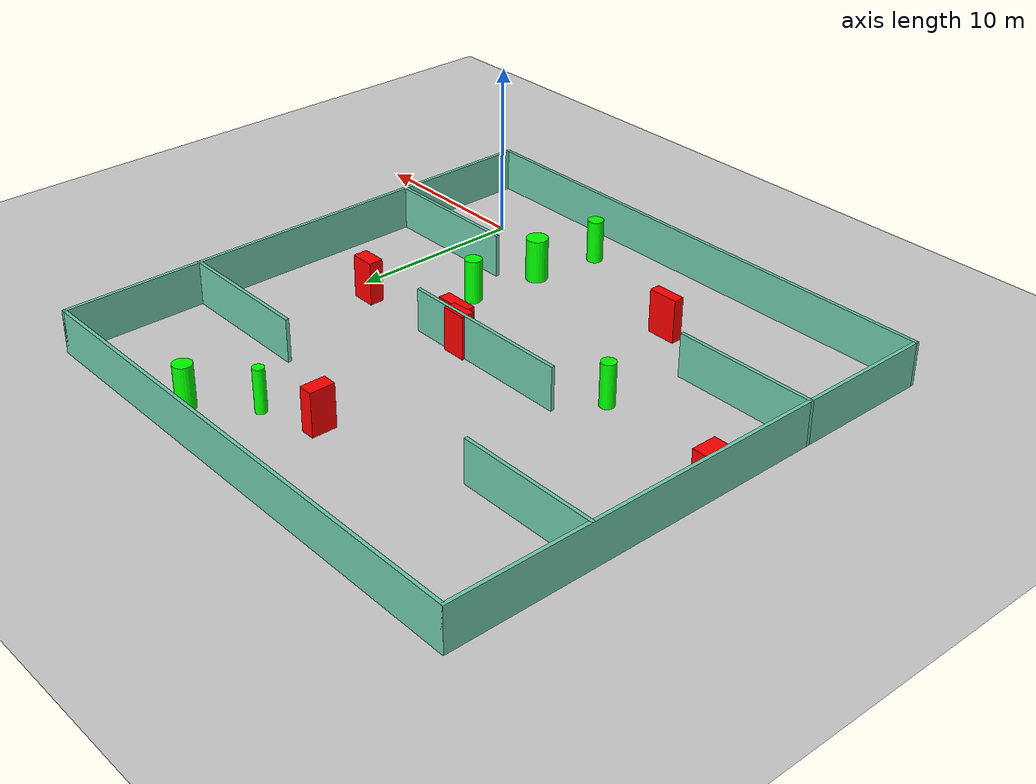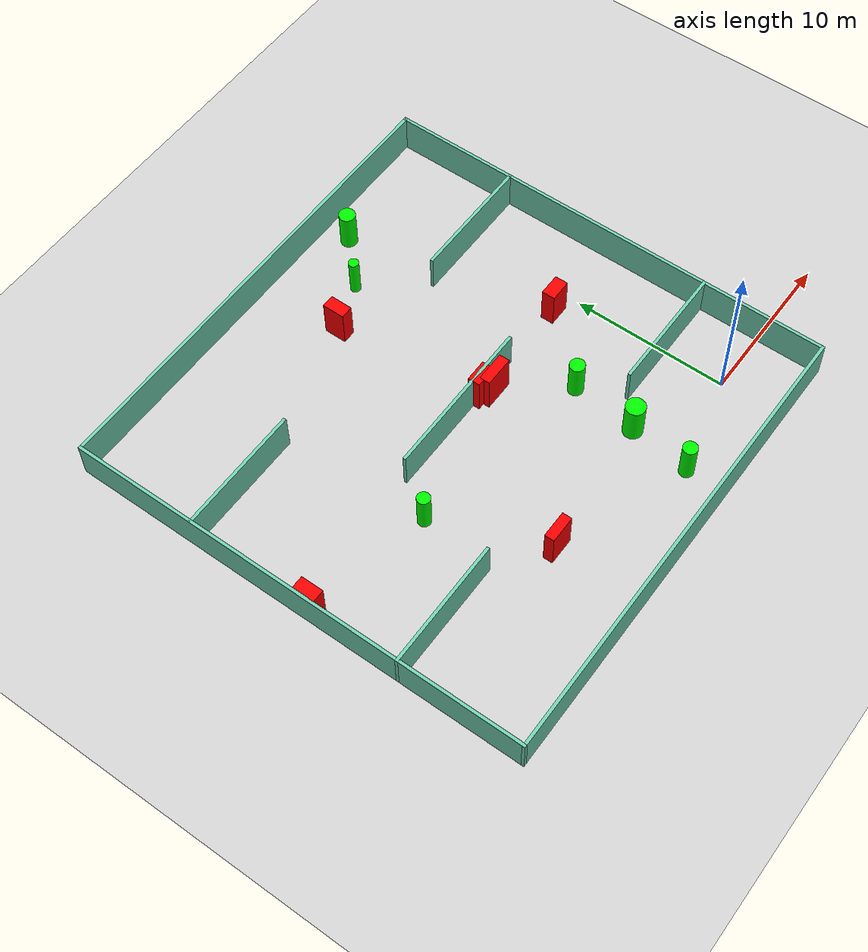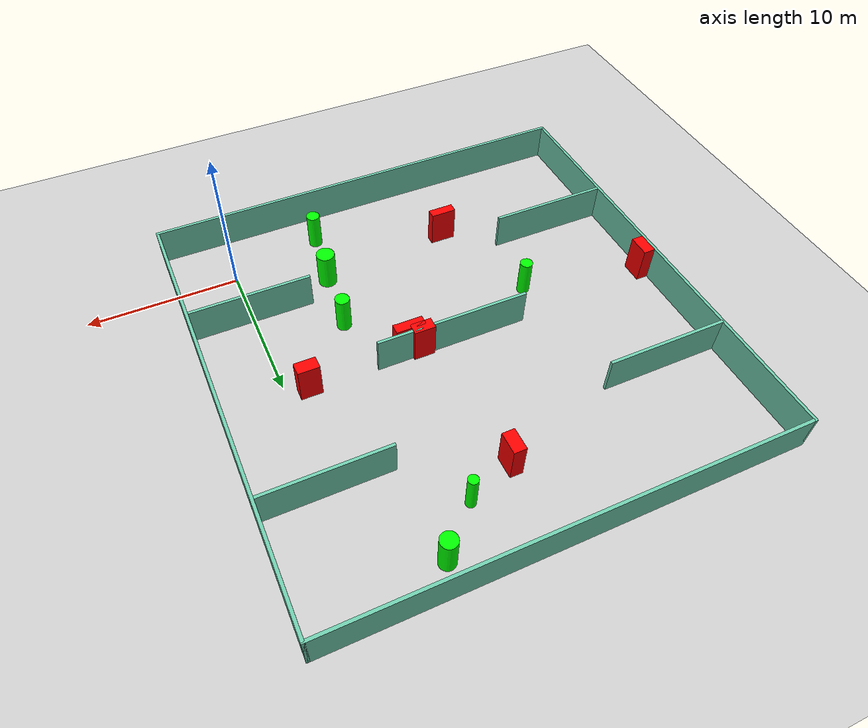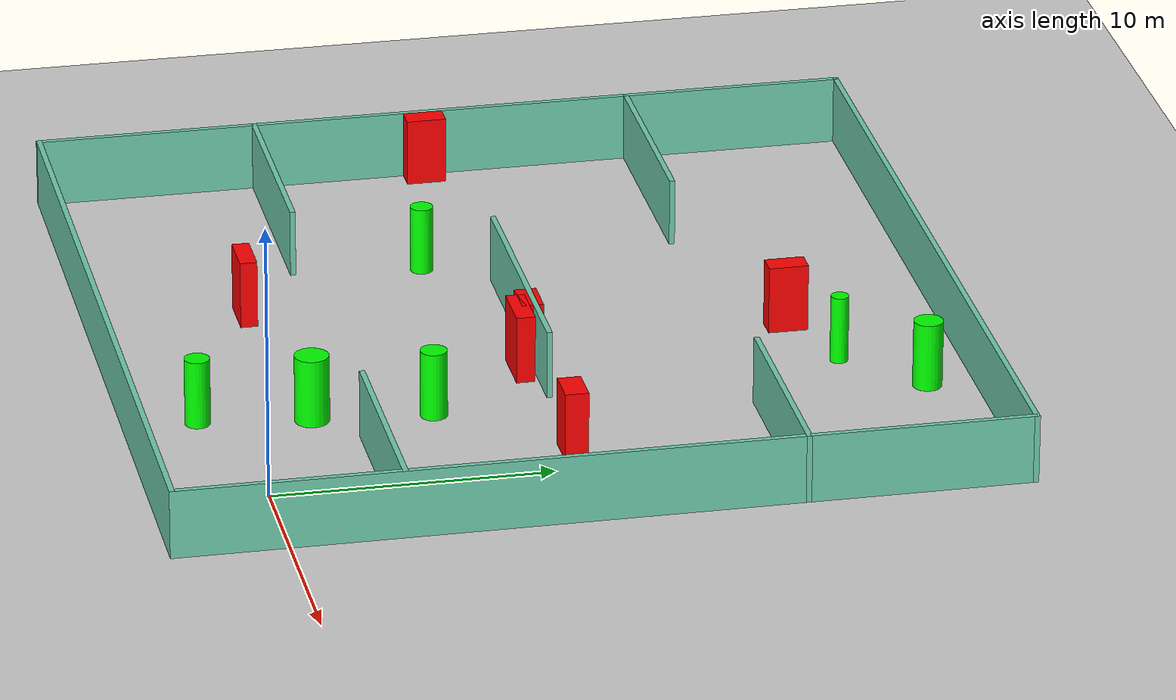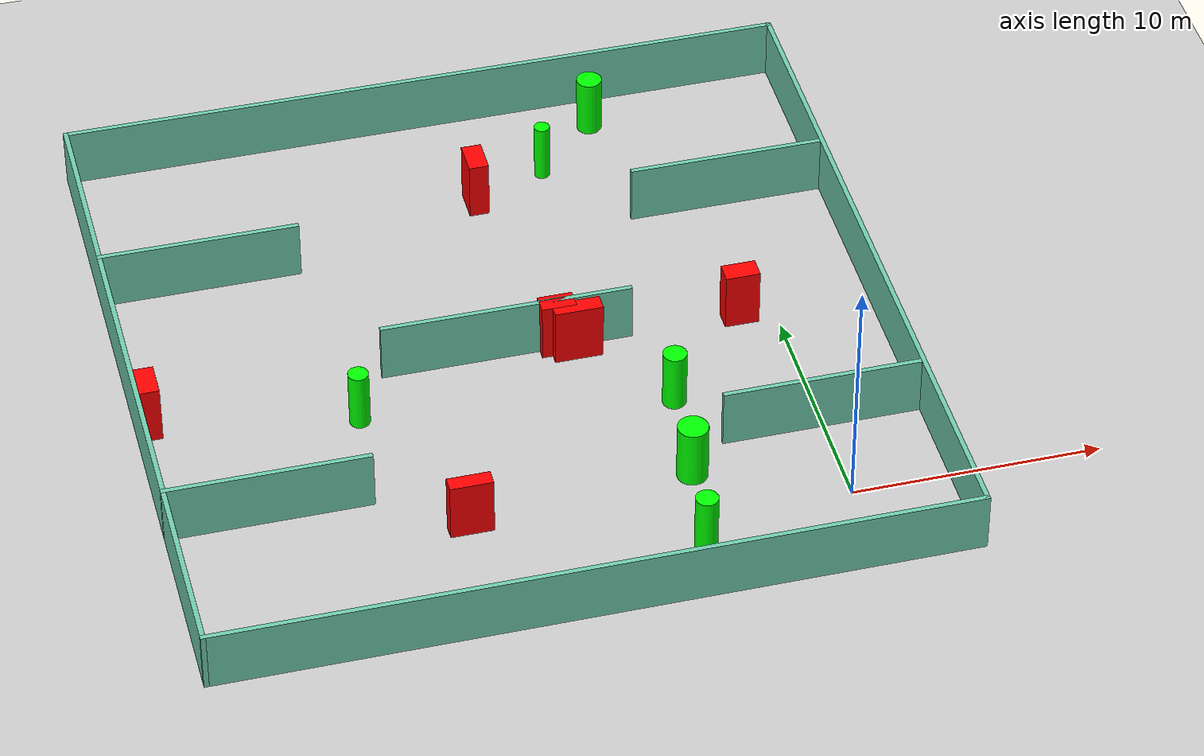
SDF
<sdf version="1.7">
 <world name="default">
  <light name="sun" type="directional">
   <pose>0 0 10 0 -0 0</pose>
   <diffuse>0.8 0.8 0.8 1</diffuse>
   <specular>0.2 0.2 0.2 1</specular>
   <attenuation>
    <range>1000</range>
    <constant>0.9</constant>
    <linear>0.01</linear>
    <quadratic>0.001</quadratic>
   </attenuation>
   <direction>-0.5 0.1 -0.9</direction>
   <spot><inner_angle>0</inner_angle><outer_angle>0</outer_angle><falloff>0</falloff></spot>
  </light>
  <model name="ground_plane">
   <static>1</static>
   <link name="link">
    <collision name="collision">
     <geometry><plane><normal>0 0 1</normal><size>100 100</size></plane></geometry>
     <surface>
      <contact><collide_bitmask>65535</collide_bitmask></contact>
      <friction><ode><mu>100</mu><mu2>50</mu2></ode></friction>
     </surface>
    </collision>
    <visual name="visual">
     <cast_shadows>0</cast_shadows>
     <geometry><plane><normal>0 0 1</normal><size>100 100</size></plane></geometry>
     <material>
      <script><uri>file://media/materials/scripts/gazebo.material</uri><name>Gazebo/Grey</name></script>
     </material>
    </visual>
   </link>
  </model>
  <gravity>0 0 -9.8</gravity>
  <magnetic_field>6e-06 2.3e-05 -4.2e-05</magnetic_field>
  <atmosphere type="adiabatic"/>
  <physics type="ode">
   <max_step_size>0.001</max_step_size>
   <real_time_factor>1</real_time_factor>
   <real_time_update_rate>1000</real_time_update_rate>
  </physics>
  <scene><ambient>0.4 0.4 0.4 1</ambient><background>0.7 0.7 0.7 1</background><shadows>1</shadows></scene>
  <spherical_coordinates>
   <surface_model>EARTH_WGS84</surface_model>
   <latitude_deg>0</latitude_deg>
   <longitude_deg>0</longitude_deg>
   <elevation>0</elevation>
   <heading_deg>0</heading_deg>
  </spherical_coordinates>
  <model name="my_base_walls">
   <link name="Wall_10">
    <collision name="Wall_10_Collision">
     <geometry><box><size>8.2 0.2 2.5</size></box></geometry>
     <pose>0 0 1.25 0 -0 0</pose>
    </collision>
    <visual name="Wall_10_Visual">
     <pose>0 0 1.25 0 -0 0</pose>
     <geometry><box><size>8.2 0.2 2.5</size></box></geometry>
     <material>
      <script><uri>file://media/materials/scripts/gazebo.material</uri><name>Gazebo/Grey</name></script>
      <ambient>0.435294 0.796078 0.67451 1</ambient>
     </material>
     <meta><layer>0</layer></meta>
    </visual>
    <pose>-11 -7 0 0 -0 0</pose>
   </link>
   <link name="Wall_12">
    <collision name="Wall_12_Collision">
     <geometry><box><size>8.2 0.2 2.5</size></box></geometry>
     <pose>0 0 1.25 0 -0 0</pose>
    </collision>
    <visual name="Wall_12_Visual">
     <pose>0 0 1.25 0 -0 0</pose>
     <geometry><box><size>8.2 0.2 2.5</size></box></geometry>
     <material>
      <script><uri>file://media/materials/scripts/gazebo.material</uri><name>Gazebo/Grey</name></script>
      <ambient>0.435294 0.796078 0.67451 1</ambient>
     </material>
     <meta><layer>0</layer></meta>
    </visual>
    <pose>-11 7 0 0 -0 0</pose>
   </link>
   <link name="Wall_14">
    <collision name="Wall_14_Collision">
     <geometry><box><size>8.2 0.2 2.5</size></box></geometry>
     <pose>0 0 1.25 0 -0 0</pose>
    </collision>
    <visual name="Wall_14_Visual">
     <pose>0 0 1.25 0 -0 0</pose>
     <geometry><box><size>8.2 0.2 2.5</size></box></geometry>
     <material>
      <script><uri>file://media/materials/scripts/gazebo.material</uri><name>Gazebo/Grey</name></script>
      <ambient>0.435294 0.796078 0.67451 1</ambient>
     </material>
     <meta><layer>0</layer></meta>
    </visual>
    <pose>11 7 0 0 -0 3.14159</pose>
   </link>
   <link name="Wall_16">
    <collision name="Wall_16_Collision">
     <geometry><box><size>10.2 0.2 2.5</size></box></geometry>
     <pose>0 0 1.25 0 -0 0</pose>
    </collision>
    <visual name="Wall_16_Visual">
     <pose>0 0 1.25 0 -0 0</pose>
     <geometry><box><size>10.2 0.2 2.5</size></box></geometry>
     <material>
      <script><uri>file://media/materials/scripts/gazebo.material</uri><name>Gazebo/Grey</name></script>
      <ambient>0.435294 0.796078 0.67451 1</ambient>
     </material>
     <meta><layer>0</layer></meta>
    </visual>
    <pose>0 0 0 0 -0 3.14159</pose>
   </link>
   <link name="Wall_2">
    <collision name="Wall_2_Collision">
     <geometry><box><size>30.2 0.2 2.5</size></box></geometry>
     <pose>0 0 1.25 0 -0 0</pose>
    </collision>
    <visual name="Wall_2_Visual">
     <pose>0 0 1.25 0 -0 0</pose>
     <geometry><box><size>30.2 0.2 2.5</size></box></geometry>
     <material>
      <script><uri>file://media/materials/scripts/gazebo.material</uri><name>Gazebo/Grey</name></script>
      <ambient>0.435294 0.796078 0.67451 1</ambient>
     </material>
     <meta><layer>0</layer></meta>
    </visual>
    <pose>0 -15 0 0 -0 3.14159</pose>
   </link>
   <link name="Wall_3">
    <collision name="Wall_3_Collision">
     <geometry><box><size>30.2 0.2 2.5</size></box></geometry>
     <pose>0 0 1.25 0 -0 0</pose>
    </collision>
    <visual name="Wall_3_Visual">
     <pose>0 0 1.25 0 -0 0</pose>
     <geometry><box><size>30.2 0.2 2.5</size></box></geometry>
     <material>
      <script><uri>file://media/materials/scripts/gazebo.material</uri><name>Gazebo/Grey</name></script>
      <ambient>0.435294 0.796078 0.67451 1</ambient>
     </material>
     <meta><layer>0</layer></meta>
    </visual>
    <pose>-15 0 0 0 -0 1.5708</pose>
   </link>
   <link name="Wall_4">
    <collision name="Wall_4_Collision">
     <geometry><box><size>30.2 0.2 2.5</size></box></geometry>
     <pose>0 0 1.25 0 -0 0</pose>
    </collision>
    <visual name="Wall_4_Visual">
     <pose>0 0 1.25 0 -0 0</pose>
     <geometry><box><size>30.2 0.2 2.5</size></box></geometry>
     <material>
      <script><uri>file://media/materials/scripts/gazebo.material</uri><name>Gazebo/Grey</name></script>
      <ambient>0.435294 0.796078 0.67451 1</ambient>
     </material>
     <meta><layer>0</layer></meta>
    </visual>
    <pose>0 15 0 0 -0 0</pose>
   </link>
   <link name="Wall_6">
    <collision name="Wall_6_Collision">
     <geometry><box><size>30.2 0.2 2.5</size></box></geometry>
     <pose>0 0 1.25 0 -0 0</pose>
    </collision>
    <visual name="Wall_6_Visual">
     <pose>0 0 1.25 0 -0 0</pose>
     <geometry><box><size>30.2 0.2 2.5</size></box></geometry>
     <material>
      <script><uri>file://media/materials/scripts/gazebo.material</uri><name>Gazebo/Grey</name></script>
      <ambient>0.435294 0.796078 0.67451 1</ambient>
     </material>
     <meta><layer>0</layer></meta>
    </visual>
    <pose>15 0 0 0 -0 1.5708</pose>
   </link>
   <link name="Wall_8">
    <collision name="Wall_8_Collision">
     <geometry><box><size>8.2 0.2 2.5</size></box></geometry>
     <pose>0 0 1.25 0 -0 0</pose>
    </collision>
    <visual name="Wall_8_Visual">
     <pose>0 0 1.25 0 -0 0</pose>
     <geometry><box><size>8.2 0.2 2.5</size></box></geometry>
     <material>
      <script><uri>file://media/materials/scripts/gazebo.material</uri><name>Gazebo/Grey</name></script>
      <ambient>0.435294 0.796078 0.67451 1</ambient>
     </material>
     <meta><layer>0</layer></meta>
    </visual>
    <pose>11 -7 0 0 -0 3.14159</pose>
   </link>
   <static>1</static>
   <pose>-11 11 0 0 -0 0</pose>
  </model>
  <model name="cylinder1">
   <static>1</static>
   <link name="link">
    <inertial>
     <mass>1</mass>
     <inertia><ixx>0.5</ixx><ixy>0</ixy><ixz>0</ixz><iyy>0.5</iyy><iyz>0</iyz><izz>1</izz></inertia>
    </inertial>
    <collision name="collision">
     <geometry><cylinder><radius>0.4787887050938778</radius><length>2.5</length></cylinder></geometry>
    </collision>
    <visual name="visual">
     <geometry><cylinder><radius>0.4787887050938778</radius><length>2.5</length></cylinder></geometry>
     <material>
      <ambient>0 1 0 1</ambient>
      <diffuse>0 1 0 1</diffuse>
      <specular>0.1 0.1 0.1 1</specular>
      <emissive>0 0 0 0</emissive>
     </material>
    </visual>
   </link>
   <pose>-5.27381795550243 6.754923093504619 1.25 0 0 0</pose>
  </model>
  <model name="cylinder2">
   <static>1</static>
   <link name="link">
    <inertial>
     <mass>1</mass>
     <inertia><ixx>0.5</ixx><ixy>0</ixy><ixz>0</ixz><iyy>0.5</iyy><iyz>0</iyz><izz>1</izz></inertia>
    </inertial>
    <collision name="collision">
     <geometry><cylinder><radius>0.4515551412071854</radius><length>2.5</length></cylinder></geometry>
    </collision>
    <visual name="visual">
     <geometry><cylinder><radius>0.4515551412071854</radius><length>2.5</length></cylinder></geometry>
     <material>
      <ambient>0 1 0 1</ambient>
      <diffuse>0 1 0 1</diffuse>
      <specular>0.1 0.1 0.1 1</specular>
      <emissive>0 0 0 0</emissive>
     </material>
    </visual>
   </link>
   <pose>-6.229721069336673 -1.4360588544367405 1.25 0 0 0</pose>
  </model>
  <model name="cylinder3">
   <static>1</static>
   <link name="link">
    <inertial>
     <mass>1</mass>
     <inertia><ixx>0.5</ixx><ixy>0</ixy><ixz>0</ixz><iyy>0.5</iyy><iyz>0</iyz><izz>1</izz></inertia>
    </inertial>
    <collision name="collision">
     <geometry><cylinder><radius>0.6159320855252433</radius><length>2.5</length></cylinder></geometry>
    </collision>
    <visual name="visual">
     <geometry><cylinder><radius>0.6159320855252433</radius><length>2.5</length></cylinder></geometry>
     <material>
      <ambient>0 1 0 1</ambient>
      <diffuse>0 1 0 1</diffuse>
      <specular>0.1 0.1 0.1 1</specular>
      <emissive>0 0 0 0</emissive>
     </material>
    </visual>
   </link>
   <pose>-5.6993433381179415 2.5163648071824145 1.25 0 0 0</pose>
  </model>
  <model name="cylinder4">
   <static>1</static>
   <link name="link">
    <inertial>
     <mass>1</mass>
     <inertia><ixx>0.5</ixx><ixy>0</ixy><ixz>0</ixz><iyy>0.5</iyy><iyz>0</iyz><izz>1</izz></inertia>
    </inertial>
    <collision name="collision">
     <geometry><cylinder><radius>0.5235251992563146</radius><length>2.5</length></cylinder></geometry>
    </collision>
    <visual name="visual">
     <geometry><cylinder><radius>0.5235251992563146</radius><length>2.5</length></cylinder></geometry>
     <material>
      <ambient>0 1 0 1</ambient>
      <diffuse>0 1 0 1</diffuse>
      <specular>0.1 0.1 0.1 1</specular>
      <emissive>0 0 0 0</emissive>
     </material>
    </visual>
   </link>
   <pose>-4.279086964012329 24.221599282130605 1.25 0 0 0</pose>
  </model>
  <model name="cylinder5">
   <static>1</static>
   <link name="link">
    <inertial>
     <mass>1</mass>
     <inertia><ixx>0.5</ixx><ixy>0</ixy><ixz>0</ixz><iyy>0.5</iyy><iyz>0</iyz><izz>1</izz></inertia>
    </inertial>
    <collision name="collision">
     <geometry><cylinder><radius>0.32044169882157125</radius><length>2.5</length></cylinder></geometry>
    </collision>
    <visual name="visual">
     <geometry><cylinder><radius>0.32044169882157125</radius><length>2.5</length></cylinder></geometry>
     <material>
      <ambient>0 1 0 1</ambient>
      <diffuse>0 1 0 1</diffuse>
      <specular>0.1 0.1 0.1 1</specular>
      <emissive>0 0 0 0</emissive>
     </material>
    </visual>
   </link>
   <pose>-6.937107534766485 21.660465664087535 1.25 0 0 0</pose>
  </model>
  <model name="cylinder6">
   <static>1</static>
   <link name="link">
    <inertial>
     <mass>1</mass>
     <inertia><ixx>0.5</ixx><ixy>0</ixy><ixz>0</ixz><iyy>0.5</iyy><iyz>0</iyz><izz>1</izz></inertia>
    </inertial>
    <collision name="collision">
     <geometry><cylinder><radius>0.4122435459954131</radius><length>2.5</length></cylinder></geometry>
    </collision>
    <visual name="visual">
     <geometry><cylinder><radius>0.4122435459954131</radius><length>2.5</length></cylinder></geometry>
     <material>
      <ambient>0 1 0 1</ambient>
      <diffuse>0 1 0 1</diffuse>
      <specular>0.1 0.1 0.1 1</specular>
      <emissive>0 0 0 0</emissive>
     </material>
    </visual>
   </link>
   <pose>-17.47560684852518 8.647915112347393 1.25 0 0 0</pose>
  </model>
  <model name="box1">
   <static>1</static>
   <link name="link">
    <inertial>
     <mass>1</mass>
     <inertia><ixx>0.083</ixx><ixy>0</ixy><ixz>0</ixz><iyy>0.083</iyy><iyz>0</iyz><izz>0.083</izz></inertia>
    </inertial>
    <collision name="collision">
     <geometry><box><size>0.807016737843315 1.4474604325628257 2.5</size></box></geometry>
    </collision>
    <visual name="visual">
     <geometry><box><size>0.807016737843315 1.4474604325628257 2.5</size></box></geometry>
     <material>
      <ambient>1 0 0 1</ambient>
      <diffuse>1 0 0 1</diffuse>
      <specular>0.1 0.1 0.1 1</specular>
      <emissive>0 0 0 0</emissive>
     </material>
    </visual>
    <sensor name="my_contact" type="contact">
     <contact><collision>box_collision</collision><topic>__default_topic__</topic></contact>
    </sensor>
   </link>
   <pose>-25.508584777394294 10.292097093904419 1.25 0 0 0</pose>
  </model>
  <model name="box2">
   <static>1</static>
   <link name="link">
    <inertial>
     <mass>1</mass>
     <inertia><ixx>0.083</ixx><ixy>0</ixy><ixz>0</ixz><iyy>0.083</iyy><iyz>0</iyz><izz>0.083</izz></inertia>
    </inertial>
    <collision name="collision">
     <geometry><box><size>1.4017736391840538 0.7799848832742435 2.5</size></box></geometry>
    </collision>
    <visual name="visual">
     <geometry><box><size>1.4017736391840538 0.7799848832742435 2.5</size></box></geometry>
     <material>
      <ambient>1 0 0 1</ambient>
      <diffuse>1 0 0 1</diffuse>
      <specular>0.1 0.1 0.1 1</specular>
      <emissive>0 0 0 0</emissive>
     </material>
    </visual>
    <sensor name="my_contact" type="contact">
     <contact><collision>box_collision</collision><topic>__default_topic__</topic></contact>
    </sensor>
   </link>
   <pose>-8.977424585250777 10.88264506772148 1.25 0 0 0</pose>
  </model>
  <model name="box3">
   <static>1</static>
   <link name="link">
    <inertial>
     <mass>1</mass>
     <inertia><ixx>0.083</ixx><ixy>0</ixy><ixz>0</ixz><iyy>0.083</iyy><iyz>0</iyz><izz>0.083</izz></inertia>
    </inertial>
    <collision name="collision">
     <geometry><box><size>0.8175881798078612 1.4286105563867895 2.5</size></box></geometry>
    </collision>
    <visual name="visual">
     <geometry><box><size>0.8175881798078612 1.4286105563867895 2.5</size></box></geometry>
     <material>
      <ambient>1 0 0 1</ambient>
      <diffuse>1 0 0 1</diffuse>
      <specular>0.1 0.1 0.1 1</specular>
      <emissive>0 0 0 0</emissive>
     </material>
    </visual>
    <sensor name="my_contact" type="contact">
     <contact><collision>box_collision</collision><topic>__default_topic__</topic></contact>
    </sensor>
   </link>
   <pose>-10.052572511238623 20.443484376091355 1.25 0 0 0</pose>
  </model>
  <model name="box4">
   <static>1</static>
   <link name="link">
    <inertial>
     <mass>1</mass>
     <inertia><ixx>0.083</ixx><ixy>0</ixy><ixz>0</ixz><iyy>0.083</iyy><iyz>0</iyz><izz>0.083</izz></inertia>
    </inertial>
    <collision name="collision">
     <geometry><box><size>1.4002117325878705 0.8382593378405463 2.5</size></box></geometry>
    </collision>
    <visual name="visual">
     <geometry><box><size>1.4002117325878705 0.8382593378405463 2.5</size></box></geometry>
     <material>
      <ambient>1 0 0 1</ambient>
      <diffuse>1 0 0 1</diffuse>
      <specular>0.1 0.1 0.1 1</specular>
      <emissive>0 0 0 0</emissive>
     </material>
    </visual>
    <sensor name="my_contact" type="contact">
     <contact><collision>box_collision</collision><topic>__default_topic__</topic></contact>
    </sensor>
   </link>
   <pose>-1.4604707495544638 10.915079337203728 1.25 0 0 0</pose>
  </model>
  <model name="box5">
   <static>1</static>
   <link name="link">
    <inertial>
     <mass>1</mass>
     <inertia><ixx>0.083</ixx><ixy>0</ixy><ixz>0</ixz><iyy>0.083</iyy><iyz>0</iyz><izz>0.083</izz></inertia>
    </inertial>
    <collision name="collision">
     <geometry><box><size>1.958727247657705 0.6756462230735393 2.5</size></box></geometry>
    </collision>
    <visual name="visual">
     <geometry><box><size>1.958727247657705 0.6756462230735393 2.5</size></box></geometry>
     <material>
      <ambient>1 0 0 1</ambient>
      <diffuse>1 0 0 1</diffuse>
      <specular>0.1 0.1 0.1 1</specular>
      <emissive>0 0 0 0</emissive>
     </material>
    </visual>
    <sensor name="my_contact" type="contact">
     <contact><collision>box_collision</collision><topic>__default_topic__</topic></contact>
    </sensor>
   </link>
   <pose>-8.268316760529675 10.43493394268703 1.25 0 0 0</pose>
  </model>
  <model name="box6">
   <static>1</static>
   <link name="link">
    <inertial>
     <mass>1</mass>
     <inertia><ixx>0.083</ixx><ixy>0</ixy><ixz>0</ixz><iyy>0.083</iyy><iyz>0</iyz><izz>0.083</izz></inertia>
    </inertial>
    <collision name="collision">
     <geometry><box><size>1.7198842368691762 0.6208429313428003 2.5</size></box></geometry>
    </collision>
    <visual name="visual">
     <geometry><box><size>1.7198842368691762 0.6208429313428003 2.5</size></box></geometry>
     <material>
      <ambient>1 0 0 1</ambient>
      <diffuse>1 0 0 1</diffuse>
      <specular>0.1 0.1 0.1 1</specular>
      <emissive>0 0 0 0</emissive>
     </material>
    </visual>
    <sensor name="my_contact" type="contact">
     <contact><collision>box_collision</collision><topic>__default_topic__</topic></contact>
    </sensor>
   </link>
   <pose>-14.663074604229132 1.6856557459265744 1.25 0 0 0</pose>
  </model>
 </world>
</sdf>
